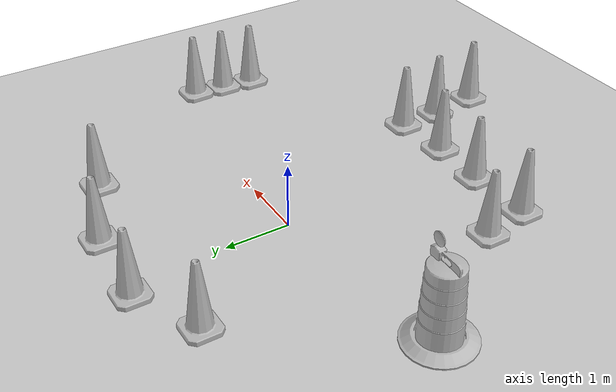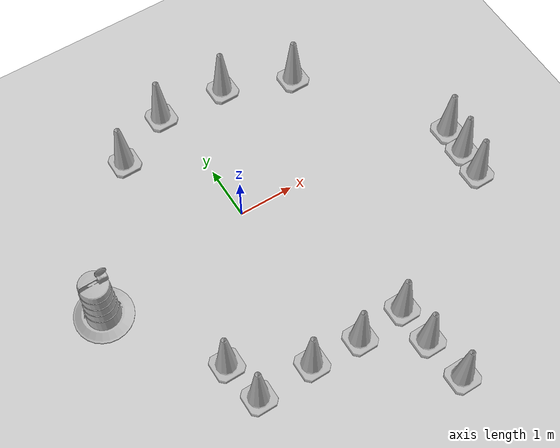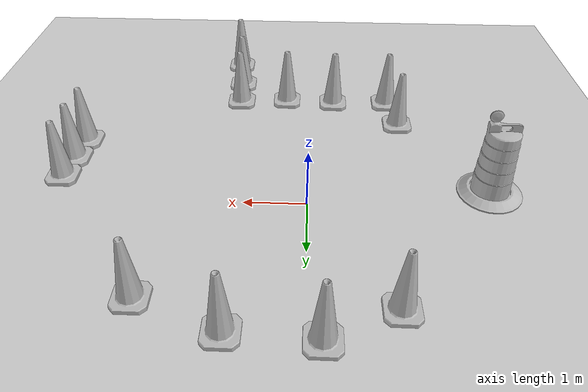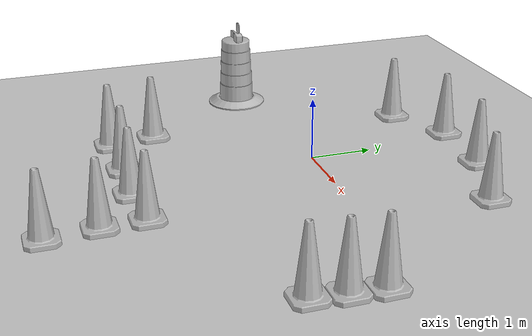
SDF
<sdf version="1.7">
 <world name="default">
  <light name="sun" type="directional">
   <pose>0 0 10 0 -0 0</pose>
   <diffuse>0.8 0.8 0.8 1</diffuse>
   <specular>0.2 0.2 0.2 1</specular>
   <attenuation>
    <range>1000</range>
    <constant>0.9</constant>
    <linear>0.01</linear>
    <quadratic>0.001</quadratic>
   </attenuation>
   <direction>-0.5 0.1 -0.9</direction>
   <spot><inner_angle>0</inner_angle><outer_angle>0</outer_angle><falloff>0</falloff></spot>
  </light>
  <model name="ground_plane">
   <static>1</static>
   <link name="link">
    <collision name="collision">
     <geometry><plane><normal>0 0 1</normal><size>100 100</size></plane></geometry>
     <surface><friction><ode><mu>100</mu><mu2>50</mu2></ode></friction></surface>
    </collision>
    <visual name="visual">
     <cast_shadows>0</cast_shadows>
     <geometry><plane><normal>0 0 1</normal><size>100 100</size></plane></geometry>
     <material>
      <script><uri>file://media/materials/scripts/gazebo.material</uri><name>Gazebo/Grey</name></script>
     </material>
    </visual>
   </link>
  </model>
  <gravity>0 0 -9.8</gravity>
  <magnetic_field>6e-06 2.3e-05 -4.2e-05</magnetic_field>
  <atmosphere type="adiabatic"/>
  <physics type="ode">
   <max_step_size>0.001</max_step_size>
   <real_time_factor>1</real_time_factor>
   <real_time_update_rate>1000</real_time_update_rate>
  </physics>
  <scene><ambient>0.4 0.4 0.4 1</ambient><background>0.7 0.7 0.7 1</background><shadows>1</shadows></scene>
  <audio><device>default</device></audio>
  <spherical_coordinates>
   <surface_model>EARTH_WGS84</surface_model>
   <latitude_deg>0</latitude_deg>
   <longitude_deg>0</longitude_deg>
   <elevation>0</elevation>
   <heading_deg>0</heading_deg>
  </spherical_coordinates>
  <model name="Construction Barrel">
   <link name="link">
    <inertial>
     <pose>0 0 0.4 0 -0 0</pose>
     <mass>500</mass>
     <inertia><ixx>51.2096</ixx><iyy>51.2096</iyy><izz>25</izz><ixy>0</ixy><ixz>0</ixz><iyz>0</iyz></inertia>
    </inertial>
    <collision name="collision">
     <geometry><mesh><uri>model://construction_barrel/meshes/construction_barrel.dae</uri></mesh></geometry>
    </collision>
    <visual name="visual">
     <geometry><mesh><uri>model://construction_barrel/meshes/construction_barrel.dae</uri></mesh></geometry>
    </visual>
   </link>
   <pose>-2.90361 -0.412077 -0 1e-06 -1e-06 -2.3e-05</pose>
  </model>
  <model name="Construction Cone">
   <link name="link">
    <collision name="collision">
     <geometry>
      <mesh><scale>10 10 10</scale><uri>model://construction_cone/meshes/construction_cone.dae</uri></mesh>
     </geometry>
    </collision>
    <visual name="visual">
     <geometry>
      <mesh><scale>10 10 10</scale><uri>model://construction_cone/meshes/construction_cone.dae</uri></mesh>
     </geometry>
    </visual>
    <inertial>
     <inertia><ixx>1</ixx><ixy>0</ixy><ixz>0</ixz><iyy>1</iyy><iyz>0</iyz><izz>1</izz></inertia>
     <mass>1</mass>
    </inertial>
   </link>
   <pose>-1.23144 1.982 -0 0 -1e-06 0</pose>
  </model>
  <model name="Construction Cone_clone">
   <link name="link">
    <collision name="collision">
     <geometry>
      <mesh><scale>10 10 10</scale><uri>model://construction_cone/meshes/construction_cone.dae</uri></mesh>
     </geometry>
    </collision>
    <visual name="visual">
     <geometry>
      <mesh><scale>10 10 10</scale><uri>model://construction_cone/meshes/construction_cone.dae</uri></mesh>
     </geometry>
    </visual>
    <inertial>
     <inertia><ixx>1</ixx><ixy>0</ixy><ixz>0</ixz><iyy>1</iyy><iyz>0</iyz><izz>1</izz></inertia>
     <mass>1</mass>
    </inertial>
   </link>
   <pose>-0.215361 2.48124 -0 0 -0 0</pose>
  </model>
  <model name="Construction Cone_clone_0">
   <link name="link">
    <collision name="collision">
     <geometry>
      <mesh><scale>10 10 10</scale><uri>model://construction_cone/meshes/construction_cone.dae</uri></mesh>
     </geometry>
    </collision>
    <visual name="visual">
     <geometry>
      <mesh><scale>10 10 10</scale><uri>model://construction_cone/meshes/construction_cone.dae</uri></mesh>
     </geometry>
    </visual>
    <inertial>
     <inertia><ixx>1</ixx><ixy>0</ixy><ixz>0</ixz><iyy>1</iyy><iyz>0</iyz><izz>1</izz></inertia>
     <mass>1</mass>
    </inertial>
   </link>
   <pose>1.04071 2.41278 -0 0 -0 0</pose>
  </model>
  <model name="Construction Cone_clone_1">
   <link name="link">
    <collision name="collision">
     <geometry>
      <mesh><scale>10 10 10</scale><uri>model://construction_cone/meshes/construction_cone.dae</uri></mesh>
     </geometry>
    </collision>
    <visual name="visual">
     <geometry>
      <mesh><scale>10 10 10</scale><uri>model://construction_cone/meshes/construction_cone.dae</uri></mesh>
     </geometry>
    </visual>
    <inertial>
     <inertia><ixx>1</ixx><ixy>0</ixy><ixz>0</ixz><iyy>1</iyy><iyz>0</iyz><izz>1</izz></inertia>
     <mass>1</mass>
    </inertial>
   </link>
   <pose>2.27714 1.93686 0 -0 -0 -0</pose>
  </model>
  <model name="Construction Cone_clone_2">
   <link name="link">
    <collision name="collision">
     <geometry>
      <mesh><scale>10 10 10</scale><uri>model://construction_cone/meshes/construction_cone.dae</uri></mesh>
     </geometry>
    </collision>
    <visual name="visual">
     <geometry>
      <mesh><scale>10 10 10</scale><uri>model://construction_cone/meshes/construction_cone.dae</uri></mesh>
     </geometry>
    </visual>
    <inertial>
     <inertia><ixx>1</ixx><ixy>0</ixy><ixz>0</ixz><iyy>1</iyy><iyz>0</iyz><izz>1</izz></inertia>
     <mass>1</mass>
    </inertial>
   </link>
   <pose>-1.64506 -2.25565 -0 0 -1e-06 0</pose>
  </model>
  <model name="Construction Cone_clone_3">
   <link name="link">
    <collision name="collision">
     <geometry>
      <mesh><scale>10 10 10</scale><uri>model://construction_cone/meshes/construction_cone.dae</uri></mesh>
     </geometry>
    </collision>
    <visual name="visual">
     <geometry>
      <mesh><scale>10 10 10</scale><uri>model://construction_cone/meshes/construction_cone.dae</uri></mesh>
     </geometry>
    </visual>
    <inertial>
     <inertia><ixx>1</ixx><ixy>0</ixy><ixz>0</ixz><iyy>1</iyy><iyz>0</iyz><izz>1</izz></inertia>
     <mass>1</mass>
    </inertial>
   </link>
   <pose>-1.49656 -3 -0 0 -0 0</pose>
  </model>
  <model name="Construction Cone_clone_4">
   <link name="link">
    <collision name="collision">
     <geometry>
      <mesh><scale>10 10 10</scale><uri>model://construction_cone/meshes/construction_cone.dae</uri></mesh>
     </geometry>
    </collision>
    <visual name="visual">
     <geometry>
      <mesh><scale>10 10 10</scale><uri>model://construction_cone/meshes/construction_cone.dae</uri></mesh>
     </geometry>
    </visual>
    <inertial>
     <inertia><ixx>1</ixx><ixy>0</ixy><ixz>0</ixz><iyy>1</iyy><iyz>0</iyz><izz>1</izz></inertia>
     <mass>1</mass>
    </inertial>
   </link>
   <pose>-0.482395 -2.97351 -0 0 -0 0</pose>
  </model>
  <model name="Construction Cone_clone_5">
   <link name="link">
    <collision name="collision">
     <geometry>
      <mesh><scale>10 10 10</scale><uri>model://construction_cone/meshes/construction_cone.dae</uri></mesh>
     </geometry>
    </collision>
    <visual name="visual">
     <geometry>
      <mesh><scale>10 10 10</scale><uri>model://construction_cone/meshes/construction_cone.dae</uri></mesh>
     </geometry>
    </visual>
    <inertial>
     <inertia><ixx>1</ixx><ixy>0</ixy><ixz>0</ixz><iyy>1</iyy><iyz>0</iyz><izz>1</izz></inertia>
     <mass>1</mass>
    </inertial>
   </link>
   <pose>0.412541 -3.02296 -0 0 -0 0</pose>
  </model>
  <model name="Construction Cone_clone_6">
   <link name="link">
    <collision name="collision">
     <geometry>
      <mesh><scale>10 10 10</scale><uri>model://construction_cone/meshes/construction_cone.dae</uri></mesh>
     </geometry>
    </collision>
    <visual name="visual">
     <geometry>
      <mesh><scale>10 10 10</scale><uri>model://construction_cone/meshes/construction_cone.dae</uri></mesh>
     </geometry>
    </visual>
    <inertial>
     <inertia><ixx>1</ixx><ixy>0</ixy><ixz>0</ixz><iyy>1</iyy><iyz>0</iyz><izz>1</izz></inertia>
     <mass>1</mass>
    </inertial>
   </link>
   <pose>1.2984 -2.9568 -0 0 -0 0</pose>
  </model>
  <model name="Construction Cone_clone_7">
   <link name="link">
    <collision name="collision">
     <geometry>
      <mesh><scale>10 10 10</scale><uri>model://construction_cone/meshes/construction_cone.dae</uri></mesh>
     </geometry>
    </collision>
    <visual name="visual">
     <geometry>
      <mesh><scale>10 10 10</scale><uri>model://construction_cone/meshes/construction_cone.dae</uri></mesh>
     </geometry>
    </visual>
    <inertial>
     <inertia><ixx>1</ixx><ixy>0</ixy><ixz>0</ixz><iyy>1</iyy><iyz>0</iyz><izz>1</izz></inertia>
     <mass>1</mass>
    </inertial>
   </link>
   <pose>1.32783 -3.63423 -0 0 -0 0</pose>
  </model>
  <model name="Construction Cone_clone_8">
   <link name="link">
    <collision name="collision">
     <geometry>
      <mesh><scale>10 10 10</scale><uri>model://construction_cone/meshes/construction_cone.dae</uri></mesh>
     </geometry>
    </collision>
    <visual name="visual">
     <geometry>
      <mesh><scale>10 10 10</scale><uri>model://construction_cone/meshes/construction_cone.dae</uri></mesh>
     </geometry>
    </visual>
    <inertial>
     <inertia><ixx>1</ixx><ixy>0</ixy><ixz>0</ixz><iyy>1</iyy><iyz>0</iyz><izz>1</izz></inertia>
     <mass>1</mass>
    </inertial>
   </link>
   <pose>1.42978 -4.4337 -0 0 -0 0</pose>
  </model>
  <model name="Construction Cone_clone_9">
   <link name="link">
    <collision name="collision">
     <geometry>
      <mesh><scale>10 10 10</scale><uri>model://construction_cone/meshes/construction_cone.dae</uri></mesh>
     </geometry>
    </collision>
    <visual name="visual">
     <geometry>
      <mesh><scale>10 10 10</scale><uri>model://construction_cone/meshes/construction_cone.dae</uri></mesh>
     </geometry>
    </visual>
    <inertial>
     <inertia><ixx>1</ixx><ixy>0</ixy><ixz>0</ixz><iyy>1</iyy><iyz>0</iyz><izz>1</izz></inertia>
     <mass>1</mass>
    </inertial>
   </link>
   <pose>3.9231 -1.53179 -0 0 -0 0</pose>
  </model>
  <model name="Construction Cone_clone_10">
   <link name="link">
    <collision name="collision">
     <geometry>
      <mesh><scale>10 10 10</scale><uri>model://construction_cone/meshes/construction_cone.dae</uri></mesh>
     </geometry>
    </collision>
    <visual name="visual">
     <geometry>
      <mesh><scale>10 10 10</scale><uri>model://construction_cone/meshes/construction_cone.dae</uri></mesh>
     </geometry>
    </visual>
    <inertial>
     <inertia><ixx>1</ixx><ixy>0</ixy><ixz>0</ixz><iyy>1</iyy><iyz>0</iyz><izz>1</izz></inertia>
     <mass>1</mass>
    </inertial>
   </link>
   <pose>3.97951 -1.0221 -0 0 0 -0.005293</pose>
  </model>
  <model name="Construction Cone_clone_11">
   <link name="link">
    <collision name="collision">
     <geometry>
      <mesh><scale>10 10 10</scale><uri>model://construction_cone/meshes/construction_cone.dae</uri></mesh>
     </geometry>
    </collision>
    <visual name="visual">
     <geometry>
      <mesh><scale>10 10 10</scale><uri>model://construction_cone/meshes/construction_cone.dae</uri></mesh>
     </geometry>
    </visual>
    <inertial>
     <inertia><ixx>1</ixx><ixy>0</ixy><ixz>0</ixz><iyy>1</iyy><iyz>0</iyz><izz>1</izz></inertia>
     <mass>1</mass>
    </inertial>
   </link>
   <pose>4.0216 -0.515113 -0 0 -0 0.01894</pose>
  </model>
 </world>
</sdf>
